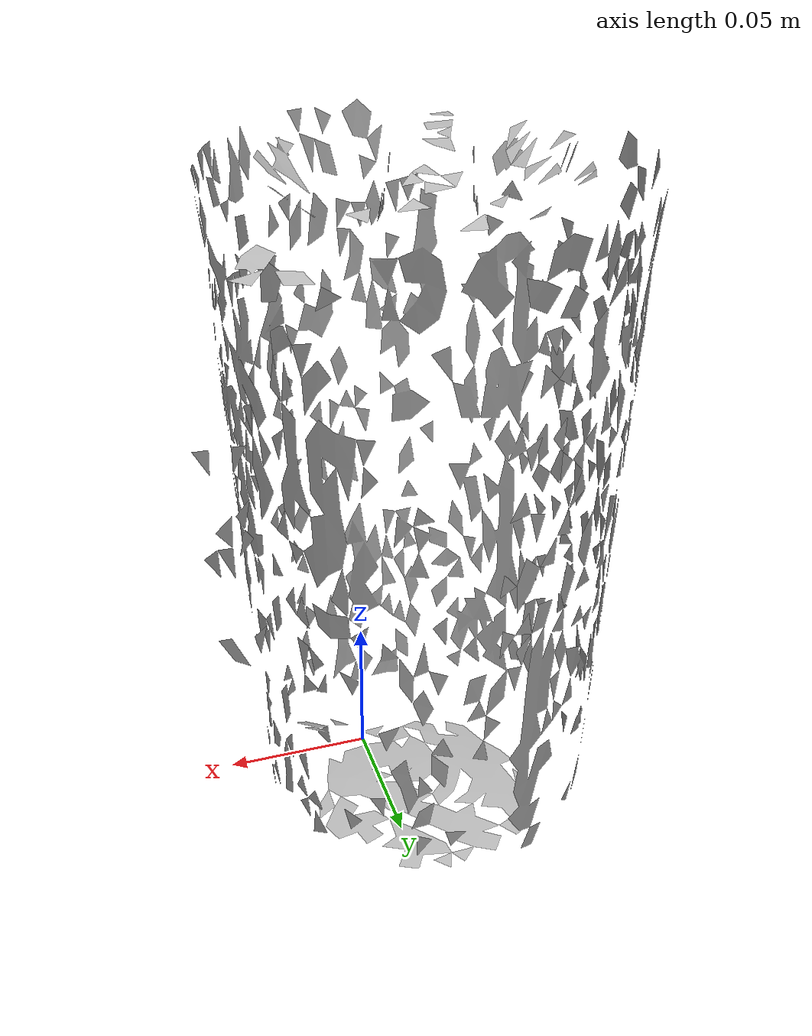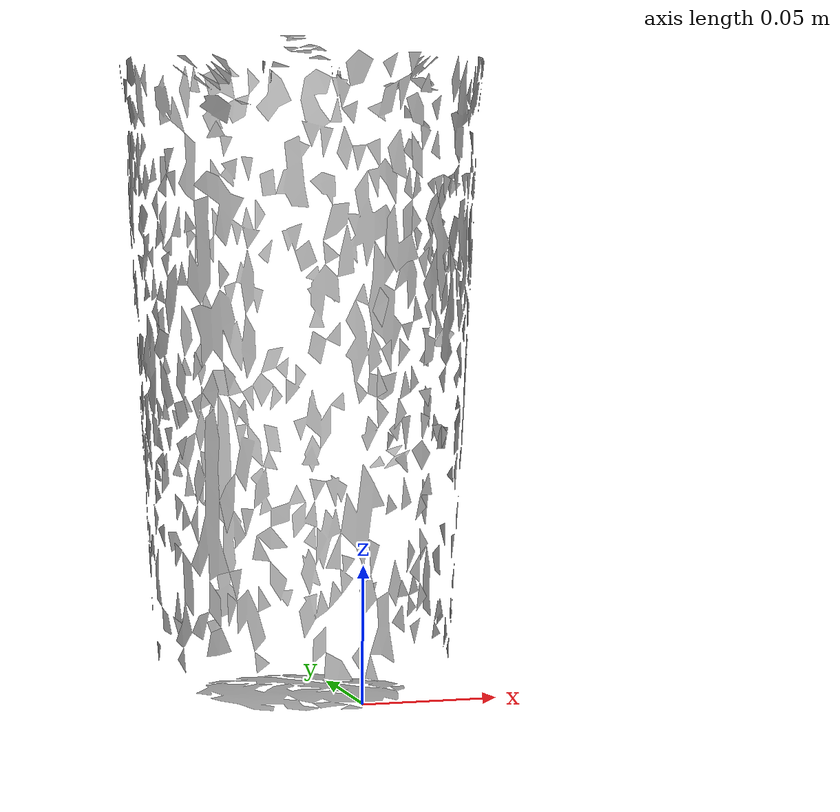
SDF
<?xml version="1.0" ?>
<sdf version="1.4">
  <model name='ycb_019_pitcher_base'>
    <link name='body'>
      <inertial>
        <mass>0.244</mass>
        <pose>-0.0134134466187 0.0334773624643 0.122636247613 0 0 0</pose>
        <inertia>
          <ixx>0.00127691830254</ixx>
          <ixy>-7.64926731428e-06</ixy>
          <ixz>-5.82346773991e-06</ixz>
          <iyy>0.00127829503482</iyy>
          <iyz>-1.03855183542e-05</iyz>
          <izz>0.000450321914707</izz>
        </inertia>
      </inertial>
      <visual name='ycb_019_pitcher_base_visual'>
        <pose>0 0 0 0 0 0</pose>
        <geometry>
          <mesh>
            <uri>model://ycb_019_pitcher_base/meshes/textured.dae</uri>
          </mesh>
        </geometry>
      </visual>
      <collision name='ycb_019_pitcher_base_collision'>
        <pose>0 0 0 0 0 0</pose>
        <geometry>
          <mesh>
            <uri>model://ycb_019_pitcher_base/meshes/nontextured.stl</uri>
          </mesh>
        </geometry>
        <max_contacts>10</max_contacts>
      </collision>
    </link>
  </model>
</sdf>
